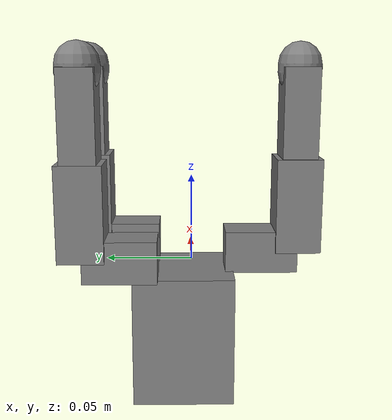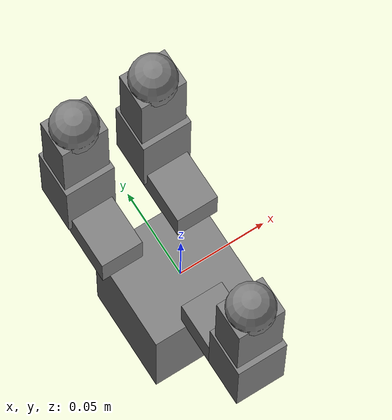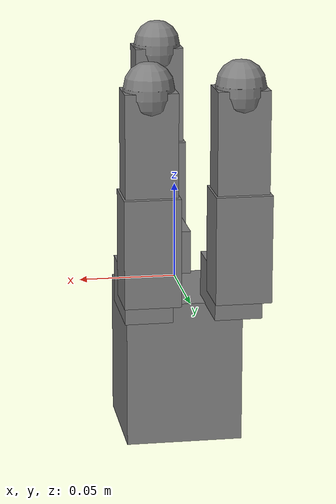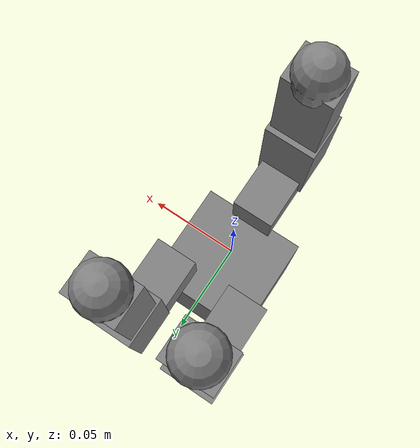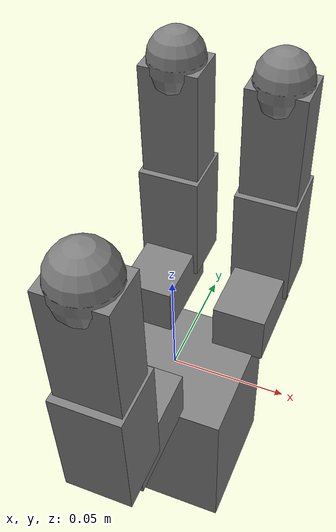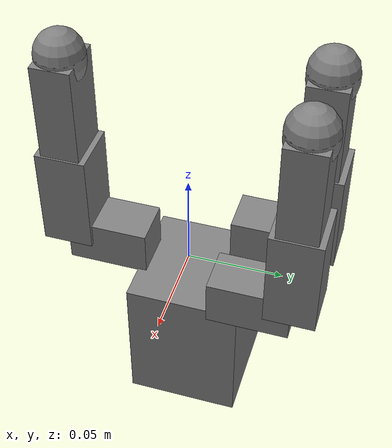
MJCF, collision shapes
<mujoco model="allegro_hand_3F">
  <compiler angle="radian" meshdir="assets/" />
  <asset>
    <mesh name="body" content_type="model/stl" file="body.stl" scale="0.001 0.001 0.001" />
    <mesh name="f1" content_type="model/stl" file="f1.stl" scale="0.001 0.001 0.001" />
    <mesh name="f2" content_type="model/stl" file="f2.stl" scale="0.001 0.001 0.001" />
    <mesh name="f3" content_type="model/stl" file="f3.stl" scale="0.001 0.001 0.001" />
    <mesh name="f4" content_type="model/stl" file="f4.stl" scale="0.001 0.001 0.001" />
  </asset>
  <worldbody>
    <body name="palm_link">
      <geom pos="0 0.006 -0.0472" quat="0.500398 0.5 -0.499602 -0.5" type="mesh" contype="0" conaffinity="0" group="1" density="0" rgba="0.2 0.2 0.2 1" mesh="body" />
      <geom type="box" size="0.030 0.029 0.0375" pos="0 0.005 -0.0425" group="3" density="1863.668892" />
      <body name="link_0_0" pos="0.0225 0.019447 0.006263">
        <joint name="joint_0_0" pos="0 0 0" axis="0 0 1" range="-1.65 0.1" actuatorfrcrange="-15 15" damping="0.1" frictionloss="0" />
        <geom pos="0.0225 -0.01575 -0.05263" quat="0.000563312 0.707388 -0.706825 -0.000562864" type="mesh" contype="0" conaffinity="0" group="1" density="0" rgba="0.2 0.2 0.2 1" mesh="f1" />
        <geom type="box" size="0.012 0.020875 0.012" pos="0 0.020875 0" group="3" density="1863.668892" />
        <body name="link_1_0" pos="0 0.04175 0">
          <joint name="joint_1_0" pos="0 0 0" axis="1 0 0" range="-1.75 1.06" actuatorfrcrange="-15 15" damping="0.1" frictionloss="0" />
          <geom quat="0.500398 -0.5 0.499602 -0.5" type="mesh" contype="0" conaffinity="0" group="1" density="0" rgba="0.2 0.2 0.2 1" mesh="f2" />
          <geom type="box" size="0.014 0.013 0.027125" pos="0 0 0.027125" group="3" density="1863.668892" />
          <body name="link_2_0" pos="0 0 0.05425">
            <joint name="joint_2_0" pos="0 0 0" axis="1 0 0" range="-1.45 1.45" actuatorfrcrange="-15 15" damping="0.1" frictionloss="0" />
            <geom pos="0.0225 -0.05725 -0.1065" quat="2.31171e-07 -0.706825 0.707388 2.30987e-07" type="mesh" contype="0" conaffinity="0" group="1" density="0" rgba="0.2 0.2 0.2 1" mesh="f3" />
            <geom type="box" size="0.013 0.010 0.0256" pos="0 0 0.0256" group="3" density="1863.668892" />
            <body name="link_2_0_tip" pos="0 0 0.05425">
              <geom pos="0.0005 0.0005 -0.019" quat="0.707388 0.706825 0 0" type="mesh" contype="0" conaffinity="0" group="1" density="0" rgba="0.9 0.9 0.9 1" mesh="f4" />
              <geom type="capsule" size="0.0125 0.0025" pos="0 0 -0.004" group="3" density="1863.668892" />
            </body>
          </body>
        </body>
      </body>
      <body name="link_3_0" pos="-0.0225 0.019447 0.006263">
        <joint name="joint_3_0" pos="0 0 0" axis="0 0 1" range="-0.1 1.65" actuatorfrcrange="-15 15" damping="0.1" frictionloss="0" />
        <geom pos="0.0225 -0.01575 -0.05263" quat="0.000563312 0.707388 -0.706825 -0.000562864" type="mesh" contype="0" conaffinity="0" group="1" density="0" rgba="0.2 0.2 0.2 1" mesh="f1" />
        <geom type="box" size="0.012 0.020875 0.012" pos="0 0.020875 0" group="3" density="1863.668892" />
        <body name="link_4_0" pos="0 0.04175 0">
          <joint name="joint_4_0" pos="0 0 0" axis="1 0 0" range="-1.75 1.06" actuatorfrcrange="-15 15" damping="0.1" frictionloss="0" />
          <geom quat="0.500398 -0.5 0.499602 -0.5" type="mesh" contype="0" conaffinity="0" group="1" density="0" rgba="0.2 0.2 0.2 1" mesh="f2" />
          <geom type="box" size="0.014 0.013 0.027125" pos="0 0 0.027125" group="3" density="1863.668892" />
          <body name="link_5_0" pos="0 0 0.05425">
            <joint name="joint_5_0" pos="0 0 0" axis="1 0 0" range="-1.45 1.45" actuatorfrcrange="-15 15" damping="0.1" frictionloss="0" />
            <geom pos="0.0225 -0.05725 -0.1065" quat="2.31171e-07 -0.706825 0.707388 2.30987e-07" type="mesh" contype="0" conaffinity="0" group="1" density="0" rgba="0.2 0.2 0.2 1" mesh="f3" />
            <geom type="box" size="0.013 0.010 0.0256" pos="0 0 0.0256" group="3" density="1863.668892" />
            <body name="link_5_0_tip" pos="0 0 0.05425">
              <geom pos="0.0005 0.0005 -0.019" quat="0.707388 0.706825 0 0" type="mesh" contype="0" conaffinity="0" group="1" density="0" rgba="0.9 0.9 0.9 1" mesh="f4" />
              <geom type="capsule" size="0.0125 0.0025" pos="0 0 -0.004" group="3" density="1863.668892" />
            </body>
          </body>
        </body>
      </body>
      <body name="link_6_0" pos="0 -0.019447 0.006263" quat="0.000796327 0 0 1">
        <joint name="joint_6_0" pos="0 0 0" axis="0 0 1" range="-0.6 0.6" actuatorfrcrange="-15 15" damping="0.1" frictionloss="0" />
        <geom pos="0.0225 -0.01575 -0.05263" quat="0.000563312 0.707388 -0.706825 -0.000562864" type="mesh" contype="0" conaffinity="0" group="1" density="0" rgba="0.2 0.2 0.2 1" mesh="f1" />
        <geom type="box" size="0.012 0.020875 0.012" pos="0 0.020875 0" group="3" density="1863.668892" />
        <body name="link_7_0" pos="0 0.04175 0">
          <joint name="joint_7_0" pos="0 0 0" axis="1 0 0" range="-1.75 1.06" actuatorfrcrange="-15 15" damping="0.1" frictionloss="0" />
          <geom quat="0.500398 -0.5 0.499602 -0.5" type="mesh" contype="0" conaffinity="0" group="1" density="0" rgba="0.2 0.2 0.2 1" mesh="f2" />
          <geom type="box" size="0.014 0.013 0.027125" pos="0 0 0.027125" group="3" density="1863.668892" />
          <body name="link_8_0" pos="0 0 0.05425">
            <joint name="joint_8_0" pos="0 0 0" axis="1 0 0" range="-1.45 1.45" actuatorfrcrange="-15 15" damping="0.1" frictionloss="0" />
            <geom pos="0.0225 -0.05725 -0.1065" quat="2.31171e-07 -0.706825 0.707388 2.30987e-07" type="mesh" contype="0" conaffinity="0" group="1" density="0" rgba="0.2 0.2 0.2 1" mesh="f3" />
            <geom type="box" size="0.013 0.010 0.0256" pos="0 0 0.0256" group="3" density="1863.668892" />
            <body name="link_8_0_tip" pos="0 0 0.05425">
              <geom pos="0.0005 0.0005 -0.019" quat="0.707388 0.706825 0 0" type="mesh" contype="0" conaffinity="0" group="1" density="0" rgba="0.9 0.9 0.9 1" mesh="f4" />
              <geom type="capsule" size="0.0125 0.0025" pos="0 0 -0.004" group="3" density="1863.668892" />
            </body>
          </body>
        </body>
      </body>
    </body>
  </worldbody>
  <contact>
    <exclude body1="palm_link" body2="link_0_0" />
    <exclude body1="palm_link" body2="link_3_0" />
    <exclude body1="palm_link" body2="link_6_0" />
  </contact>
  <actuator>
    <position name="act_0_0" joint="joint_0_0" kp="1.0" ctrlrange="-1.65 0.1" forcerange="-15 15" />
    <position name="act_1_0" joint="joint_1_0" kp="1.0" ctrlrange="-1.75 1.06" forcerange="-15 15" />
    <position name="act_2_0" joint="joint_2_0" kp="1.0" ctrlrange="-1.45 1.45" forcerange="-15 15" />
    <position name="act_3_0" joint="joint_3_0" kp="1.0" ctrlrange="-0.1 1.65" forcerange="-15 15" />
    <position name="act_4_0" joint="joint_4_0" kp="1.0" ctrlrange="-1.75 1.06" forcerange="-15 15" />
    <position name="act_5_0" joint="joint_5_0" kp="1.0" ctrlrange="-1.45 1.45" forcerange="-15 15" />
    <position name="act_6_0" joint="joint_6_0" kp="1.0" ctrlrange="-0.6 0.6" forcerange="-15 15" />
    <position name="act_7_0" joint="joint_7_0" kp="1.0" ctrlrange="-1.75 1.06" forcerange="-15 15" />
    <position name="act_8_0" joint="joint_8_0" kp="1.0" ctrlrange="-1.45 1.45" forcerange="-15 15" />
  </actuator>
</mujoco>
